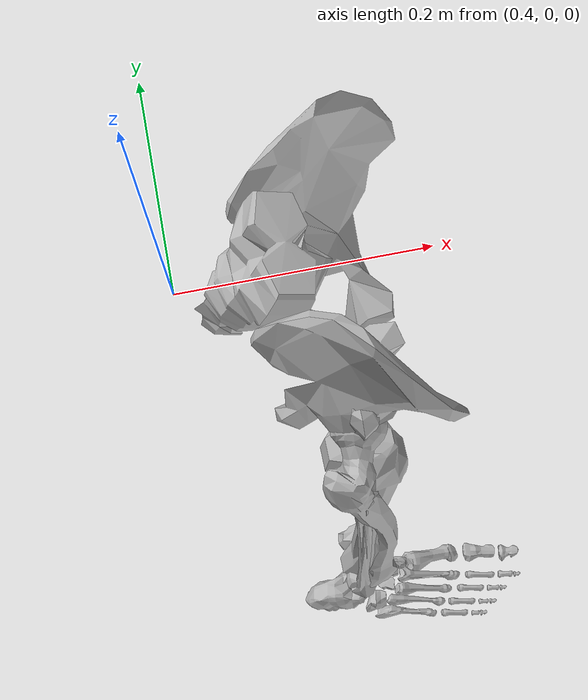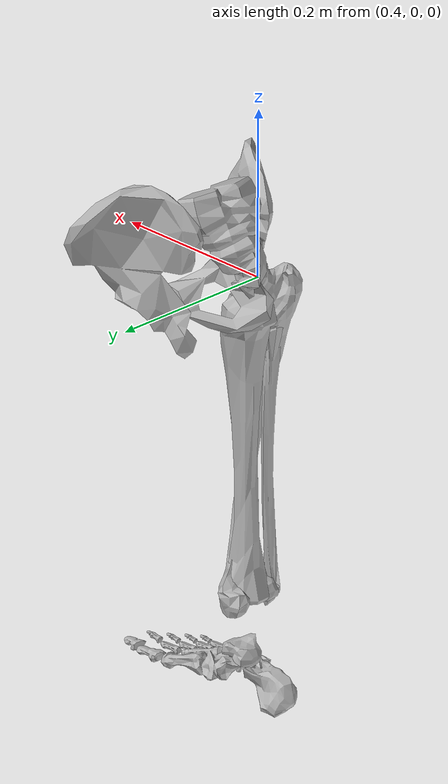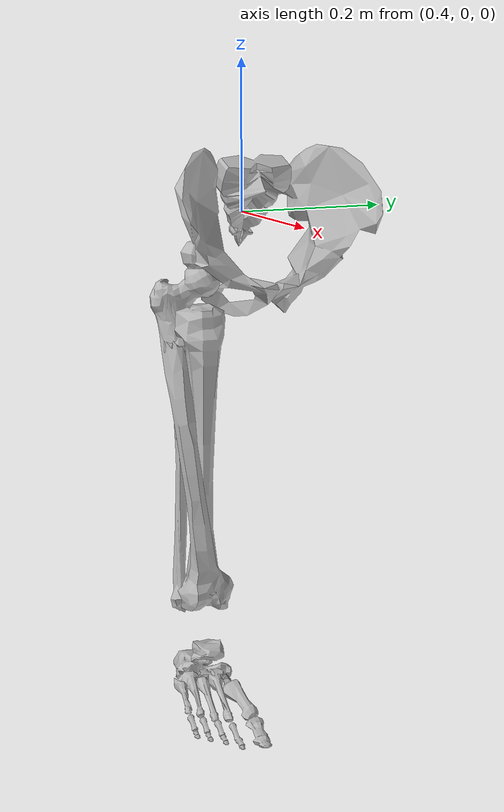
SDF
<?xml version="1.0" ?>
<sdf version="1.5">
  <model name="leg6dof9musc">
    <muscles>model://leg6dof9musc/muscles.osim</muscles>
    <link name="pelvis">
      <pose frame="">0.593075 -0.017089 0.0 1.5708 0.0 0.0</pose>
      <inertial>
        <mass>10.75379227</mass>
        <pose>0.0 0.0 0.0 0.0 0.0 0.0</pose>
        <inertia>
          <ixx>0.1027003</ixx>
          <ixy>0</ixy>
          <ixz>0</ixz>
          <iyy>0.08701554</iyy>
          <iyz>0</iyz>
          <izz>0.05784385</izz>
        </inertia>
      </inertial>
      <visual name="sacrum">
        <pose> -0 0 -0 0 0 0</pose>
        <geometry>
          <mesh>
            <uri>model://leg6dof9musc/meshes/visuals/sacrum.dae</uri>
            <scale> 1 1 1</scale>
          </mesh>
        </geometry>
      </visual>
      <visual name="pelvis">
        <pose> -0 0 -0 0 0 0</pose>
        <geometry>
          <mesh>
            <uri>model://leg6dof9musc/meshes/visuals/pelvis.dae</uri>
            <scale> 1 1 1</scale>
          </mesh>
        </geometry>
      </visual>
      <visual name="l_pelvis">
        <pose> -0 0 -0 0 0 0</pose>
        <geometry>
          <mesh>
            <uri>model://leg6dof9musc/meshes/visuals/l_pelvis.dae</uri>
            <scale> 1 1 1</scale>
          </mesh>
        </geometry>
      </visual>
    </link>
    <link name="femur_r">
      <pose frame="">0.5191238 -0.1044288 -0.0691397 1.5708 0.0 0.0</pose>
      <inertial>
        <mass>8.54926632</mass>
        <pose>0.0 0.0 0.0 0.0 0.0 0.0</pose>
        <inertia>
          <ixx>0.16956431</ixx>
          <ixy>0</ixy>
          <ixz>0</ixz>
          <iyy>0.0444489</iyy>
          <iyz>0</iyz>
          <izz>0.17880867</izz>
        </inertia>
      </inertial>
      <visual name="femur_r">
        <pose> -0 0 -0 0 0 0</pose>
        <geometry>
          <mesh>
            <uri>model://leg6dof9musc/meshes/visuals/femur_r.dae</uri>
            <scale> 1 1 1</scale>
          </mesh>
        </geometry>
      </visual>
    </link>
    <link name="tibia_r">
      <pose frame="">0.5191238 -0.1044288 -0.0691397 1.5708 0.0 0.0</pose>
      <inertial>
        <mass>4.67404243</mass>
        <pose>0.0 0.0 0.0 0.0 0.0 0.0</pose>
        <inertia>
          <ixx>0.08023514</ixx>
          <ixy>0</ixy>
          <ixz>0</ixz>
          <iyy>0.00811903</iyy>
          <iyz>0</iyz>
          <izz>0.08134951</izz>
        </inertia>
      </inertial>
      <visual name="tibia_r">
        <pose> -0 0 -0 0 0 0</pose>
        <geometry>
          <mesh>
            <uri>model://leg6dof9musc/meshes/visuals/tibia_r.dae</uri>
            <scale> 1 1 1</scale>
          </mesh>
        </geometry>
      </visual>
      <visual name="fibula_r">
        <pose> -0 0 -0 0 0 0</pose>
        <geometry>
          <mesh>
            <uri>model://leg6dof9musc/meshes/visuals/fibula_r.dae</uri>
            <scale> 1 1 1</scale>
          </mesh>
        </geometry>
      </visual>
    </link>
    <link name="patella_r">
      <pose frame="">0.5191238 -0.1044288 -0.0691397 1.5708 0.0 0.0</pose>
      <inertial>
        <mass>0.09191376</mass>
        <pose>0.0 0.0 0.0 0.0 0.0 0.0</pose>
        <inertia>
          <ixx>0.00110296</ixx>
          <ixy>0</ixy>
          <ixz>0</ixz>
          <iyy>0.00110296</iyy>
          <iyz>0</iyz>
          <izz>0.00110296</izz>
        </inertia>
      </inertial>
      <visual name="pat">
        <pose> -0 0 -0 0 0 0</pose>
        <geometry>
          <mesh>
            <uri>model://leg6dof9musc/meshes/visuals/pat.dae</uri>
            <scale> 1 1 1</scale>
          </mesh>
        </geometry>
      </visual>
    </link>
    <link name="talus_r">
      <pose frame="">0.5191238 -0.1044288 -0.5523427 1.5708 0.0 0.0</pose>
      <inertial>
        <mass>0.12606858</mass>
        <pose>0.0 0.0 0.0 0.0 0.0 0.0</pose>
        <inertia>
          <ixx>0.00202166</ixx>
          <ixy>0</ixy>
          <ixz>0</ixz>
          <iyy>0.00202166</iyy>
          <iyz>0</iyz>
          <izz>0.00202166</izz>
        </inertia>
      </inertial>
      <visual name="talus">
        <pose> -0 0 -0 0 0 0</pose>
        <geometry>
          <mesh>
            <uri>model://leg6dof9musc/meshes/visuals/talus.dae</uri>
            <scale> 1 1 1</scale>
          </mesh>
        </geometry>
      </visual>
    </link>
    <link name="calcn_r">
      <pose frame="">0.457073 -0.1145595 -0.6055291 1.5708 0.0 0.0</pose>
      <inertial>
        <mass>1.07224816</mass>
        <pose>0.0 0.0 0.0 0.0 0.0 0.0</pose>
        <inertia>
          <ixx>0.00090462</ixx>
          <ixy>0</ixy>
          <ixz>0</ixz>
          <iyy>0.00361848</iyy>
          <iyz>0</iyz>
          <izz>0.00361848</izz>
        </inertia>
      </inertial>
      <visual name="foot">
        <pose> -0 0 -0 0 0 0</pose>
        <geometry>
          <mesh>
            <uri>model://leg6dof9musc/meshes/visuals/foot.dae</uri>
            <scale> 1 1 1</scale>
          </mesh>
        </geometry>
      </visual>
    </link>
    <link name="toes_r">
      <pose frame="">0.640893 -0.11558642 -0.60758296 1.5708 0.0 0.0</pose>
      <inertial>
        <mass>0.18614228</mass>
        <pose>0.0 0.0 0.0 0.0 0.0 0.0</pose>
        <inertia>
          <ixx>0</ixx>
          <ixy>0</ixy>
          <ixz>0</ixz>
          <iyy>0</iyy>
          <iyz>0</iyz>
          <izz>0.00090462</izz>
        </inertia>
      </inertial>
      <visual name="bofoot">
        <pose> -0 0 -0 0 0 0</pose>
        <geometry>
          <mesh>
            <uri>model://leg6dof9musc/meshes/visuals/bofoot.dae</uri>
            <scale> 1 1 1</scale>
          </mesh>
        </geometry>
      </visual>
    </link>
    <joint name="ground_pelvis" type="ball">
      <parent>world</parent>
      <child>pelvis</child>
    </joint>
    <joint name="hip_r" type="ball">
      <parent>pelvis</parent>
      <child>femur_r</child>
    </joint>
    <joint name="knee_r" type="ball">
      <parent>femur_r</parent>
      <child>tibia_r</child>
    </joint>
    <joint name="tib_pat_r" type="ball">
      <parent>tibia_r</parent>
      <child>patella_r</child>
    </joint>
    <joint name="ankle_r" type="ball">
      <parent>tibia_r</parent>
      <child>talus_r</child>
    </joint>
    <joint name="subtalar_r" type="fixed">
      <parent>talus_r</parent>
      <child>calcn_r</child>
    </joint>
    <joint name="mtp_r" type="fixed">
      <parent>calcn_r</parent>
      <child>toes_r</child>
    </joint>
    <plugin filename="libgazebo_ros_muscle_interface.so" name="muscle_interface_plugin"/>
  </model>
</sdf>
